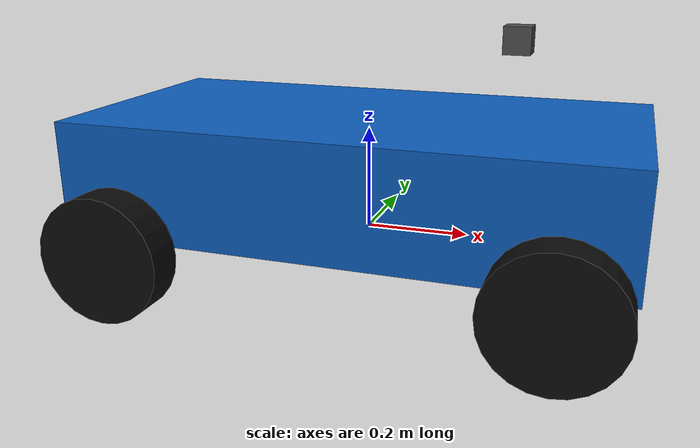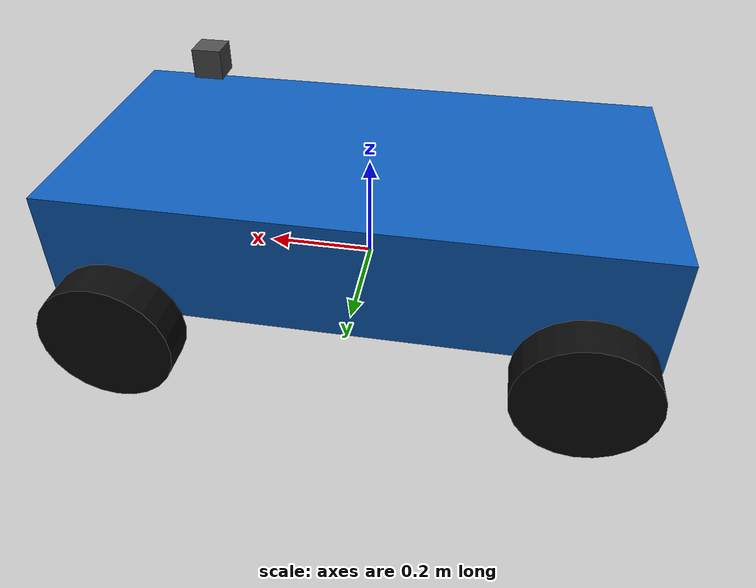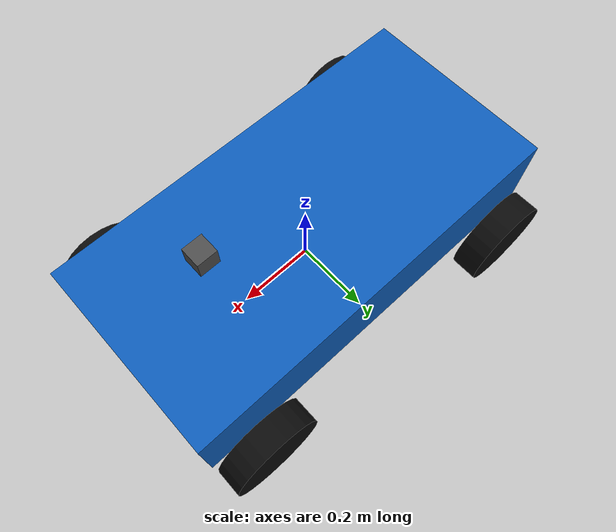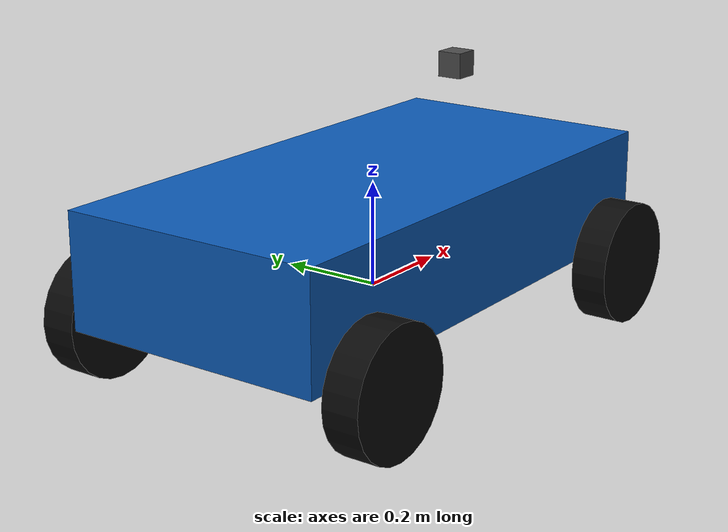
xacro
<?xml version="1.0"?>
<robot xmlns:xacro="http://www.ros.org/wiki/xacro" name="course_ackermann">
  <!-- Размеры из models/course_ackermann/model.sdf (м, кг, с; REP-103). -->
  <xacro:property name="base_length" value="1.05"/>
  <xacro:property name="base_width" value="0.52"/>
  <xacro:property name="base_height" value="0.22"/>
  <xacro:property name="base_mass" value="12.0"/>
  <xacro:property name="wheel_radius" value="0.12"/>
  <xacro:property name="wheel_width" value="0.07"/>
  <xacro:property name="wheel_mass" value="0.8"/>
  <xacro:property name="track_width" value="0.62"/>
  <xacro:property name="wheel_base" value="0.80"/>
  <xacro:property name="body_z" value="0.12"/>
  <xacro:property name="sensor_x" value="0.28"/>
  <xacro:property name="sensor_z" value="0.38"/>
  <xacro:property name="sensor_mass" value="0.033"/>

  <xacro:macro name="box_inertia" params="m x y z">
    <inertial>
      <mass value="${m}"/>
      <inertia
        ixx="${m*(y*y+z*z)/12.0}" ixy="0.0" ixz="0.0"
        iyy="${m*(x*x+z*z)/12.0}" iyz="0.0"
        izz="${m*(x*x+y*y)/12.0}"/>
    </inertial>
  </xacro:macro>

  <xacro:macro name="cylinder_inertia" params="m r l">
    <inertial>
      <mass value="${m}"/>
      <inertia
        ixx="${m*(3*r*r+l*l)/12.0}" ixy="0.0" ixz="0.0"
        iyy="${m*(3*r*r+l*l)/12.0}" iyz="0.0"
        izz="${m*r*r/2.0}"/>
    </inertial>
  </xacro:macro>

  <xacro:macro name="sensor_link" params="name xyz">
    <link name="${name}">
      <xacro:box_inertia m="${sensor_mass}" x="0.05" y="0.05" z="0.05"/>
      <visual>
        <geometry><box size="0.05 0.05 0.05"/></geometry>
        <material name="sensor_grey"><color rgba="0.3 0.3 0.3 1"/></material>
      </visual>
      <collision>
        <geometry><box size="0.05 0.05 0.05"/></geometry>
      </collision>
    </link>
    <joint name="${name}_joint" type="fixed">
      <parent link="base_link"/>
      <child link="${name}"/>
      <origin xyz="${xyz}" rpy="0 0 0"/>
    </joint>
  </xacro:macro>

  <xacro:macro name="wheel" params="prefix xyz">
    <link name="${prefix}_wheel">
      <xacro:cylinder_inertia m="${wheel_mass}" r="${wheel_radius}" l="${wheel_width}"/>
      <visual>
        <origin xyz="0 0 0" rpy="1.57079632679 0 0"/>
        <geometry>
          <cylinder radius="${wheel_radius}" length="${wheel_width}"/>
        </geometry>
        <material name="wheel_black"><color rgba="0.04 0.04 0.04 1"/></material>
      </visual>
      <collision>
        <origin xyz="0 0 0" rpy="1.57079632679 0 0"/>
        <geometry>
          <cylinder radius="${wheel_radius}" length="${wheel_width}"/>
        </geometry>
      </collision>
    </link>
    <joint name="${prefix}_wheel_joint" type="continuous">
      <parent link="base_link"/>
      <child link="${prefix}_wheel"/>
      <origin xyz="${xyz}" rpy="0 0 0"/>
      <axis xyz="0 1 0"/>
    </joint>
  </xacro:macro>

  <link name="base_link">
    <xacro:box_inertia m="${base_mass}" x="${base_length}" y="${base_width}" z="${base_height}"/>
    <visual>
      <origin xyz="0 0 ${body_z}" rpy="0 0 0"/>
      <geometry>
        <box size="${base_length} ${base_width} ${base_height}"/>
      </geometry>
      <material name="body_blue"><color rgba="0.05 0.36 0.72 1"/></material>
    </visual>
    <collision>
      <origin xyz="0 0 ${body_z}" rpy="0 0 0"/>
      <geometry>
        <box size="${base_length} ${base_width} ${base_height}"/>
      </geometry>
    </collision>
  </link>

  <!-- Сенсоры: parent = base_link (контракт ПР06). -->
  <xacro:sensor_link name="camera_link" xyz="${sensor_x} 0 ${sensor_z}"/>
  <xacro:sensor_link name="lidar_link" xyz="${sensor_x} 0 ${sensor_z}"/>
  <xacro:sensor_link name="imu_link" xyz="${sensor_x} 0 ${sensor_z}"/>

  <xacro:wheel prefix="front_left" xyz="${wheel_base/2} ${track_width/2} 0"/>
  <xacro:wheel prefix="front_right" xyz="${wheel_base/2} ${-track_width/2} 0"/>
  <xacro:wheel prefix="rear_left" xyz="${-wheel_base/2} ${track_width/2} 0"/>
  <xacro:wheel prefix="rear_right" xyz="${-wheel_base/2} ${-track_width/2} 0"/>
</robot>
